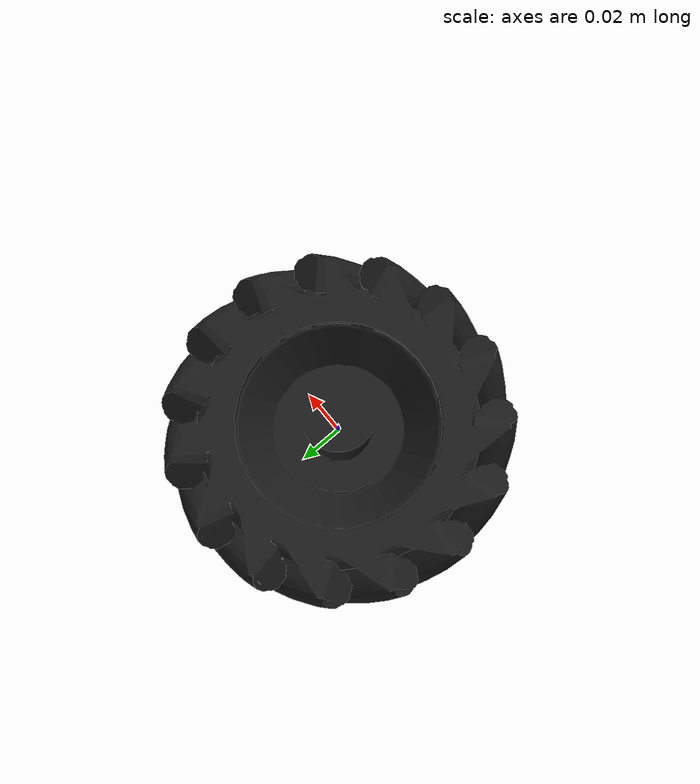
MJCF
<mujoco model="wheel_link">
  <default>
    <default class="visual">
      <geom group="2" type="mesh" contype="0" conaffinity="0"/>
    </default>
    <default class="collision">
      <geom group="3" type="mesh"/>
    </default>
  </default>
  <asset>
    <material name="mtl_m6_wheel_link" specular="0.20000000000000004" shininess="1.0" rgba="0.10196078 0.10196078 0.10196078 1.0"/>
    <mesh file="wheel_link.obj"/>
    <mesh file="wheel_link_collision_0.obj"/>
    <mesh file="wheel_link_collision_1.obj"/>
  </asset>
  <worldbody>
    <body name="wheel_link">
      <geom material="mtl_m6_wheel_link" mesh="wheel_link" class="visual"/>
      <geom mesh="wheel_link_collision_0" rgba="0.36369494550756687 0.806714416445938 0.3666636591020419 1" class="collision"/>
      <geom mesh="wheel_link_collision_1" rgba="0.8602694500305725 0.8352929984221583 0.25349853486741813 1" class="collision"/>
    </body>
  </worldbody>
</mujoco>
